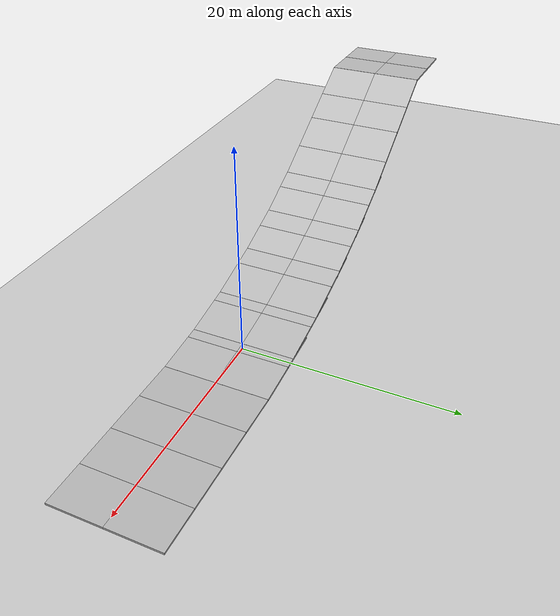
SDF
<sdf version="1.6">
 <world name="default">
  <light name="sun" type="directional">
   <pose>0 0 10 0 -0 0</pose>
   <diffuse>0.8 0.8 0.8 1</diffuse>
   <specular>0.1 0.1 0.1 1</specular>
   <attenuation>
    <range>1000</range>
    <constant>0.9</constant>
    <linear>0.01</linear>
    <quadratic>0.001</quadratic>
   </attenuation>
   <direction>-0.5 0.5 -1</direction>
  </light>
  <model name="ground_plane">
   <static>1</static>
   <link name="link">
    <collision name="collision">
     <geometry><plane><normal>0 0 1</normal><size>100 100</size></plane></geometry>
     <surface><friction><ode><mu>100</mu><mu2>50</mu2></ode></friction></surface>
    </collision>
    <visual name="visual">
     <cast_shadows>0</cast_shadows>
     <geometry><plane><normal>0 0 1</normal><size>100 100</size></plane></geometry>
     <material>
      <script><uri>file://media/materials/scripts/gazebo.material</uri><name>Gazebo/Grey</name></script>
     </material>
    </visual>
   </link>
  </model>
  <gravity>0 0 -9.8</gravity>
  <magnetic_field>6e-06 2.3e-05 -4.2e-05</magnetic_field>
  <atmosphere type="adiabatic"/>
  <physics name="default_physics" default="0" type="ode">
   <max_step_size>0.001</max_step_size>
   <real_time_factor>1</real_time_factor>
   <real_time_update_rate>1000</real_time_update_rate>
  </physics>
  <scene><ambient>0.4 0.4 0.4 1</ambient><background>0.7 0.7 0.7 1</background><shadows>1</shadows></scene>
  <spherical_coordinates>
   <surface_model>EARTH_WGS84</surface_model>
   <latitude_deg>0</latitude_deg>
   <longitude_deg>0</longitude_deg>
   <elevation>0</elevation>
   <heading_deg>0</heading_deg>
  </spherical_coordinates>
  <model name="mud_box">
   <static>1</static>
   <link name="link">
    <collision name="collision"><geometry><box><size>8 10 0.2</size></box></geometry></collision>
    <visual name="visual_1">
     <pose>-2 2.5 0 0 -0 0</pose>
     <cast_shadows>0</cast_shadows>
     <geometry><box><size>4 5 0.2</size></box></geometry>
     <material>
      <script>
       <uri>model://mud_box/materials/scripts</uri>
       <uri>model://mud_box/materials/textures</uri>
       <name>vrc/mud</name>
      </script>
     </material>
    </visual>
    <visual name="visual_2">
     <pose>2 2.5 0 0 -0 0</pose>
     <cast_shadows>0</cast_shadows>
     <geometry><box><size>4 5 0.2</size></box></geometry>
     <material>
      <script>
       <uri>model://mud_box/materials/scripts</uri>
       <uri>model://mud_box/materials/textures</uri>
       <name>vrc/mud</name>
      </script>
     </material>
    </visual>
    <visual name="visual_3">
     <pose>2 -2.5 0 0 -0 0</pose>
     <cast_shadows>0</cast_shadows>
     <geometry><box><size>4 5 0.2</size></box></geometry>
     <material>
      <script>
       <uri>model://mud_box/materials/scripts</uri>
       <uri>model://mud_box/materials/textures</uri>
       <name>vrc/mud</name>
      </script>
     </material>
    </visual>
    <visual name="visual_4">
     <pose>-2 -2.5 0 0 -0 0</pose>
     <cast_shadows>0</cast_shadows>
     <geometry><box><size>4 5 0.2</size></box></geometry>
     <material>
      <script>
       <uri>model://mud_box/materials/scripts</uri>
       <uri>model://mud_box/materials/textures</uri>
       <name>vrc/mud</name>
      </script>
     </material>
    </visual>
   </link>
   <pose>9 0 0 0 -0 0</pose>
  </model>
  <model name="mud_box_clone">
   <static>1</static>
   <link name="link">
    <collision name="collision"><geometry><box><size>8 10 0.2</size></box></geometry></collision>
    <visual name="visual_1">
     <pose>-2 2.5 0 0 -0 0</pose>
     <cast_shadows>0</cast_shadows>
     <geometry><box><size>4 5 0.2</size></box></geometry>
     <material>
      <script>
       <uri>model://mud_box/materials/scripts</uri>
       <uri>model://mud_box/materials/textures</uri>
       <name>vrc/mud</name>
      </script>
     </material>
    </visual>
    <visual name="visual_2">
     <pose>2 2.5 0 0 -0 0</pose>
     <cast_shadows>0</cast_shadows>
     <geometry><box><size>4 5 0.2</size></box></geometry>
     <material>
      <script>
       <uri>model://mud_box/materials/scripts</uri>
       <uri>model://mud_box/materials/textures</uri>
       <name>vrc/mud</name>
      </script>
     </material>
    </visual>
    <visual name="visual_3">
     <pose>2 -2.5 0 0 -0 0</pose>
     <cast_shadows>0</cast_shadows>
     <geometry><box><size>4 5 0.2</size></box></geometry>
     <material>
      <script>
       <uri>model://mud_box/materials/scripts</uri>
       <uri>model://mud_box/materials/textures</uri>
       <name>vrc/mud</name>
      </script>
     </material>
    </visual>
    <visual name="visual_4">
     <pose>-2 -2.5 0 0 -0 0</pose>
     <cast_shadows>0</cast_shadows>
     <geometry><box><size>4 5 0.2</size></box></geometry>
     <material>
      <script>
       <uri>model://mud_box/materials/scripts</uri>
       <uri>model://mud_box/materials/textures</uri>
       <name>vrc/mud</name>
      </script>
     </material>
    </visual>
   </link>
   <pose>17 0 0 0 -0 0</pose>
  </model>
  <model name="mud_box_clone_0">
   <static>1</static>
   <link name="link">
    <collision name="collision"><geometry><box><size>8 10 0.2</size></box></geometry></collision>
    <visual name="visual_1">
     <pose>-2 2.5 0 0 -0 0</pose>
     <cast_shadows>0</cast_shadows>
     <geometry><box><size>4 5 0.2</size></box></geometry>
     <material>
      <script>
       <uri>model://mud_box/materials/scripts</uri>
       <uri>model://mud_box/materials/textures</uri>
       <name>vrc/mud</name>
      </script>
     </material>
    </visual>
    <visual name="visual_2">
     <pose>2 2.5 0 0 -0 0</pose>
     <cast_shadows>0</cast_shadows>
     <geometry><box><size>4 5 0.2</size></box></geometry>
     <material>
      <script>
       <uri>model://mud_box/materials/scripts</uri>
       <uri>model://mud_box/materials/textures</uri>
       <name>vrc/mud</name>
      </script>
     </material>
    </visual>
    <visual name="visual_3">
     <pose>2 -2.5 0 0 -0 0</pose>
     <cast_shadows>0</cast_shadows>
     <geometry><box><size>4 5 0.2</size></box></geometry>
     <material>
      <script>
       <uri>model://mud_box/materials/scripts</uri>
       <uri>model://mud_box/materials/textures</uri>
       <name>vrc/mud</name>
      </script>
     </material>
    </visual>
    <visual name="visual_4">
     <pose>-2 -2.5 0 0 -0 0</pose>
     <cast_shadows>0</cast_shadows>
     <geometry><box><size>4 5 0.2</size></box></geometry>
     <material>
      <script>
       <uri>model://mud_box/materials/scripts</uri>
       <uri>model://mud_box/materials/textures</uri>
       <name>vrc/mud</name>
      </script>
     </material>
    </visual>
   </link>
   <pose>1.01 0 0.35 0 0.087266 0</pose>
  </model>
  <model name="mud_box_clone_0_clone">
   <static>1</static>
   <link name="link">
    <collision name="collision"><geometry><box><size>8 10 0.2</size></box></geometry></collision>
    <visual name="visual_1">
     <pose>-2 2.5 0 0 -0 0</pose>
     <cast_shadows>0</cast_shadows>
     <geometry><box><size>4 5 0.2</size></box></geometry>
     <material>
      <script>
       <uri>model://mud_box/materials/scripts</uri>
       <uri>model://mud_box/materials/textures</uri>
       <name>vrc/mud</name>
      </script>
     </material>
    </visual>
    <visual name="visual_2">
     <pose>2 2.5 0 0 -0 0</pose>
     <cast_shadows>0</cast_shadows>
     <geometry><box><size>4 5 0.2</size></box></geometry>
     <material>
      <script>
       <uri>model://mud_box/materials/scripts</uri>
       <uri>model://mud_box/materials/textures</uri>
       <name>vrc/mud</name>
      </script>
     </material>
    </visual>
    <visual name="visual_3">
     <pose>2 -2.5 0 0 -0 0</pose>
     <cast_shadows>0</cast_shadows>
     <geometry><box><size>4 5 0.2</size></box></geometry>
     <material>
      <script>
       <uri>model://mud_box/materials/scripts</uri>
       <uri>model://mud_box/materials/textures</uri>
       <name>vrc/mud</name>
      </script>
     </material>
    </visual>
    <visual name="visual_4">
     <pose>-2 -2.5 0 0 -0 0</pose>
     <cast_shadows>0</cast_shadows>
     <geometry><box><size>4 5 0.2</size></box></geometry>
     <material>
      <script>
       <uri>model://mud_box/materials/scripts</uri>
       <uri>model://mud_box/materials/textures</uri>
       <name>vrc/mud</name>
      </script>
     </material>
    </visual>
   </link>
   <pose>-4 0 1.14 0 0.174533 0</pose>
  </model>
  <model name="mud_box_clone_0_clone_clone">
   <static>1</static>
   <link name="link">
    <collision name="collision"><geometry><box><size>8 10 0.2</size></box></geometry></collision>
    <visual name="visual_1">
     <pose>-2 2.5 0 0 -0 0</pose>
     <cast_shadows>0</cast_shadows>
     <geometry><box><size>4 5 0.2</size></box></geometry>
     <material>
      <script>
       <uri>model://mud_box/materials/scripts</uri>
       <uri>model://mud_box/materials/textures</uri>
       <name>vrc/mud</name>
      </script>
     </material>
    </visual>
    <visual name="visual_2">
     <pose>2 2.5 0 0 -0 0</pose>
     <cast_shadows>0</cast_shadows>
     <geometry><box><size>4 5 0.2</size></box></geometry>
     <material>
      <script>
       <uri>model://mud_box/materials/scripts</uri>
       <uri>model://mud_box/materials/textures</uri>
       <name>vrc/mud</name>
      </script>
     </material>
    </visual>
    <visual name="visual_3">
     <pose>2 -2.5 0 0 -0 0</pose>
     <cast_shadows>0</cast_shadows>
     <geometry><box><size>4 5 0.2</size></box></geometry>
     <material>
      <script>
       <uri>model://mud_box/materials/scripts</uri>
       <uri>model://mud_box/materials/textures</uri>
       <name>vrc/mud</name>
      </script>
     </material>
    </visual>
    <visual name="visual_4">
     <pose>-2 -2.5 0 0 -0 0</pose>
     <cast_shadows>0</cast_shadows>
     <geometry><box><size>4 5 0.2</size></box></geometry>
     <material>
      <script>
       <uri>model://mud_box/materials/scripts</uri>
       <uri>model://mud_box/materials/textures</uri>
       <name>vrc/mud</name>
      </script>
     </material>
    </visual>
   </link>
   <pose>-9 0 2.375 0 0.261799 0</pose>
  </model>
  <model name="mud_box_clone_0_clone_clone_clone">
   <static>1</static>
   <link name="link">
    <collision name="collision"><geometry><box><size>8 10 0.2</size></box></geometry></collision>
    <visual name="visual_1">
     <pose>-2 2.5 0 0 -0 0</pose>
     <cast_shadows>0</cast_shadows>
     <geometry><box><size>4 5 0.2</size></box></geometry>
     <material>
      <script>
       <uri>model://mud_box/materials/scripts</uri>
       <uri>model://mud_box/materials/textures</uri>
       <name>vrc/mud</name>
      </script>
     </material>
    </visual>
    <visual name="visual_2">
     <pose>2 2.5 0 0 -0 0</pose>
     <cast_shadows>0</cast_shadows>
     <geometry><box><size>4 5 0.2</size></box></geometry>
     <material>
      <script>
       <uri>model://mud_box/materials/scripts</uri>
       <uri>model://mud_box/materials/textures</uri>
       <name>vrc/mud</name>
      </script>
     </material>
    </visual>
    <visual name="visual_3">
     <pose>2 -2.5 0 0 -0 0</pose>
     <cast_shadows>0</cast_shadows>
     <geometry><box><size>4 5 0.2</size></box></geometry>
     <material>
      <script>
       <uri>model://mud_box/materials/scripts</uri>
       <uri>model://mud_box/materials/textures</uri>
       <name>vrc/mud</name>
      </script>
     </material>
    </visual>
    <visual name="visual_4">
     <pose>-2 -2.5 0 0 -0 0</pose>
     <cast_shadows>0</cast_shadows>
     <geometry><box><size>4 5 0.2</size></box></geometry>
     <material>
      <script>
       <uri>model://mud_box/materials/scripts</uri>
       <uri>model://mud_box/materials/textures</uri>
       <name>vrc/mud</name>
      </script>
     </material>
    </visual>
   </link>
   <pose>-14 0 4 0 0.349065 0</pose>
  </model>
  <model name="mud_box_clone_0_clone_clone_clone_clone">
   <static>1</static>
   <link name="link">
    <collision name="collision"><geometry><box><size>8 10 0.2</size></box></geometry></collision>
    <visual name="visual_1">
     <pose>-2 2.5 0 0 -0 0</pose>
     <cast_shadows>0</cast_shadows>
     <geometry><box><size>4 5 0.2</size></box></geometry>
     <material>
      <script>
       <uri>model://mud_box/materials/scripts</uri>
       <uri>model://mud_box/materials/textures</uri>
       <name>vrc/mud</name>
      </script>
     </material>
    </visual>
    <visual name="visual_2">
     <pose>2 2.5 0 0 -0 0</pose>
     <cast_shadows>0</cast_shadows>
     <geometry><box><size>4 5 0.2</size></box></geometry>
     <material>
      <script>
       <uri>model://mud_box/materials/scripts</uri>
       <uri>model://mud_box/materials/textures</uri>
       <name>vrc/mud</name>
      </script>
     </material>
    </visual>
    <visual name="visual_3">
     <pose>2 -2.5 0 0 -0 0</pose>
     <cast_shadows>0</cast_shadows>
     <geometry><box><size>4 5 0.2</size></box></geometry>
     <material>
      <script>
       <uri>model://mud_box/materials/scripts</uri>
       <uri>model://mud_box/materials/textures</uri>
       <name>vrc/mud</name>
      </script>
     </material>
    </visual>
    <visual name="visual_4">
     <pose>-2 -2.5 0 0 -0 0</pose>
     <cast_shadows>0</cast_shadows>
     <geometry><box><size>4 5 0.2</size></box></geometry>
     <material>
      <script>
       <uri>model://mud_box/materials/scripts</uri>
       <uri>model://mud_box/materials/textures</uri>
       <name>vrc/mud</name>
      </script>
     </material>
    </visual>
   </link>
   <pose>-19 0 6.12 0 0.436331 0</pose>
  </model>
  <model name="mud_box_clone_0_clone_clone_clone_clone_clone">
   <static>1</static>
   <link name="link">
    <collision name="collision"><geometry><box><size>8 10 0.2</size></box></geometry></collision>
    <visual name="visual_1">
     <pose>-2 2.5 0 0 -0 0</pose>
     <cast_shadows>0</cast_shadows>
     <geometry><box><size>4 5 0.2</size></box></geometry>
     <material>
      <script>
       <uri>model://mud_box/materials/scripts</uri>
       <uri>model://mud_box/materials/textures</uri>
       <name>vrc/mud</name>
      </script>
     </material>
    </visual>
    <visual name="visual_2">
     <pose>2 2.5 0 0 -0 0</pose>
     <cast_shadows>0</cast_shadows>
     <geometry><box><size>4 5 0.2</size></box></geometry>
     <material>
      <script>
       <uri>model://mud_box/materials/scripts</uri>
       <uri>model://mud_box/materials/textures</uri>
       <name>vrc/mud</name>
      </script>
     </material>
    </visual>
    <visual name="visual_3">
     <pose>2 -2.5 0 0 -0 0</pose>
     <cast_shadows>0</cast_shadows>
     <geometry><box><size>4 5 0.2</size></box></geometry>
     <material>
      <script>
       <uri>model://mud_box/materials/scripts</uri>
       <uri>model://mud_box/materials/textures</uri>
       <name>vrc/mud</name>
      </script>
     </material>
    </visual>
    <visual name="visual_4">
     <pose>-2 -2.5 0 0 -0 0</pose>
     <cast_shadows>0</cast_shadows>
     <geometry><box><size>4 5 0.2</size></box></geometry>
     <material>
      <script>
       <uri>model://mud_box/materials/scripts</uri>
       <uri>model://mud_box/materials/textures</uri>
       <name>vrc/mud</name>
      </script>
     </material>
    </visual>
   </link>
   <pose>-24 0 8.8 0 0.523599 0</pose>
  </model>
  <model name="mud_box_clone_0_clone_clone_clone_clone_clone_clone">
   <static>1</static>
   <link name="link">
    <collision name="collision"><geometry><box><size>8 10 0.2</size></box></geometry></collision>
    <visual name="visual_1">
     <pose>-2 2.5 0 0 -0 0</pose>
     <cast_shadows>0</cast_shadows>
     <geometry><box><size>4 5 0.2</size></box></geometry>
     <material>
      <script>
       <uri>model://mud_box/materials/scripts</uri>
       <uri>model://mud_box/materials/textures</uri>
       <name>vrc/mud</name>
      </script>
     </material>
    </visual>
    <visual name="visual_2">
     <pose>2 2.5 0 0 -0 0</pose>
     <cast_shadows>0</cast_shadows>
     <geometry><box><size>4 5 0.2</size></box></geometry>
     <material>
      <script>
       <uri>model://mud_box/materials/scripts</uri>
       <uri>model://mud_box/materials/textures</uri>
       <name>vrc/mud</name>
      </script>
     </material>
    </visual>
    <visual name="visual_3">
     <pose>2 -2.5 0 0 -0 0</pose>
     <cast_shadows>0</cast_shadows>
     <geometry><box><size>4 5 0.2</size></box></geometry>
     <material>
      <script>
       <uri>model://mud_box/materials/scripts</uri>
       <uri>model://mud_box/materials/textures</uri>
       <name>vrc/mud</name>
      </script>
     </material>
    </visual>
    <visual name="visual_4">
     <pose>-2 -2.5 0 0 -0 0</pose>
     <cast_shadows>0</cast_shadows>
     <geometry><box><size>4 5 0.2</size></box></geometry>
     <material>
      <script>
       <uri>model://mud_box/materials/scripts</uri>
       <uri>model://mud_box/materials/textures</uri>
       <name>vrc/mud</name>
      </script>
     </material>
    </visual>
   </link>
   <pose>-30.5 0 12.55 0 0.523599 0</pose>
  </model>
  <model name="mud_box_clone_clone">
   <static>1</static>
   <link name="link">
    <collision name="collision"><geometry><box><size>8 10 0.2</size></box></geometry></collision>
    <visual name="visual_1">
     <pose>-2 2.5 0 0 -0 0</pose>
     <cast_shadows>0</cast_shadows>
     <geometry><box><size>4 5 0.2</size></box></geometry>
     <material>
      <script>
       <uri>model://mud_box/materials/scripts</uri>
       <uri>model://mud_box/materials/textures</uri>
       <name>vrc/mud</name>
      </script>
     </material>
    </visual>
    <visual name="visual_2">
     <pose>2 2.5 0 0 -0 0</pose>
     <cast_shadows>0</cast_shadows>
     <geometry><box><size>4 5 0.2</size></box></geometry>
     <material>
      <script>
       <uri>model://mud_box/materials/scripts</uri>
       <uri>model://mud_box/materials/textures</uri>
       <name>vrc/mud</name>
      </script>
     </material>
    </visual>
    <visual name="visual_3">
     <pose>2 -2.5 0 0 -0 0</pose>
     <cast_shadows>0</cast_shadows>
     <geometry><box><size>4 5 0.2</size></box></geometry>
     <material>
      <script>
       <uri>model://mud_box/materials/scripts</uri>
       <uri>model://mud_box/materials/textures</uri>
       <name>vrc/mud</name>
      </script>
     </material>
    </visual>
    <visual name="visual_4">
     <pose>-2 -2.5 0 0 -0 0</pose>
     <cast_shadows>0</cast_shadows>
     <geometry><box><size>4 5 0.2</size></box></geometry>
     <material>
      <script>
       <uri>model://mud_box/materials/scripts</uri>
       <uri>model://mud_box/materials/textures</uri>
       <name>vrc/mud</name>
      </script>
     </material>
    </visual>
   </link>
   <pose>-37.9 0 14.535 0 -0 0</pose>
  </model>
 </world>
</sdf>
